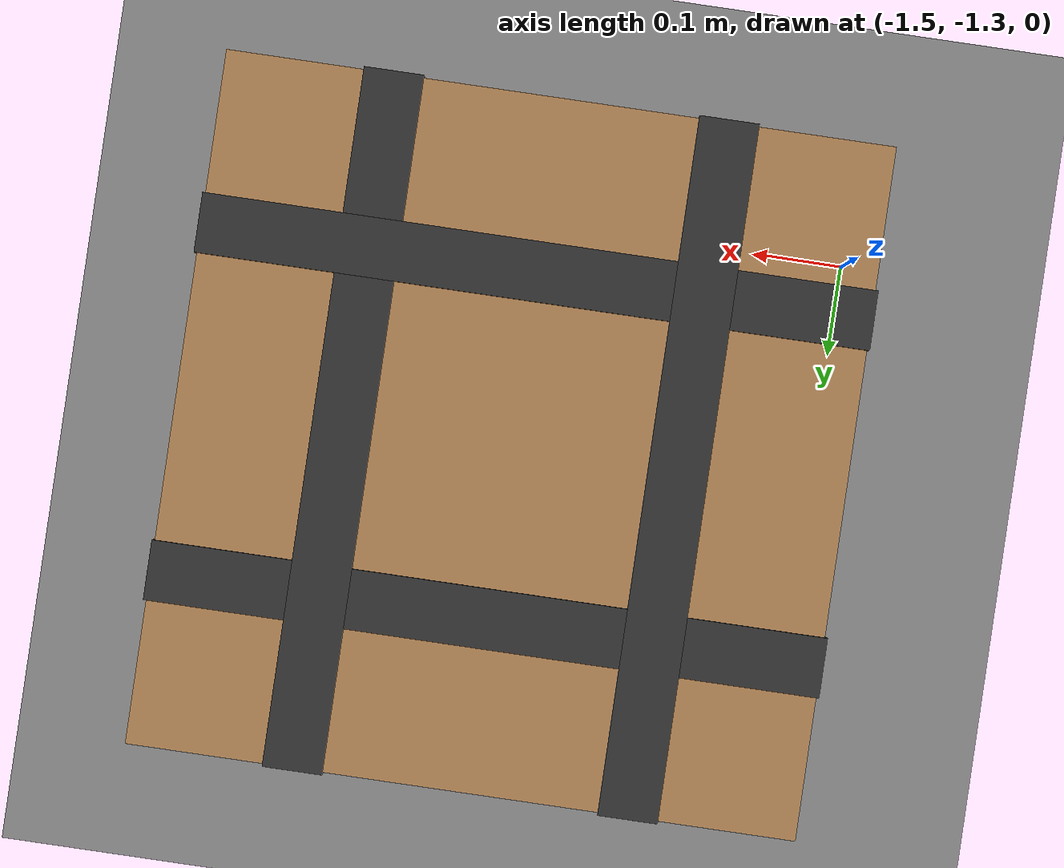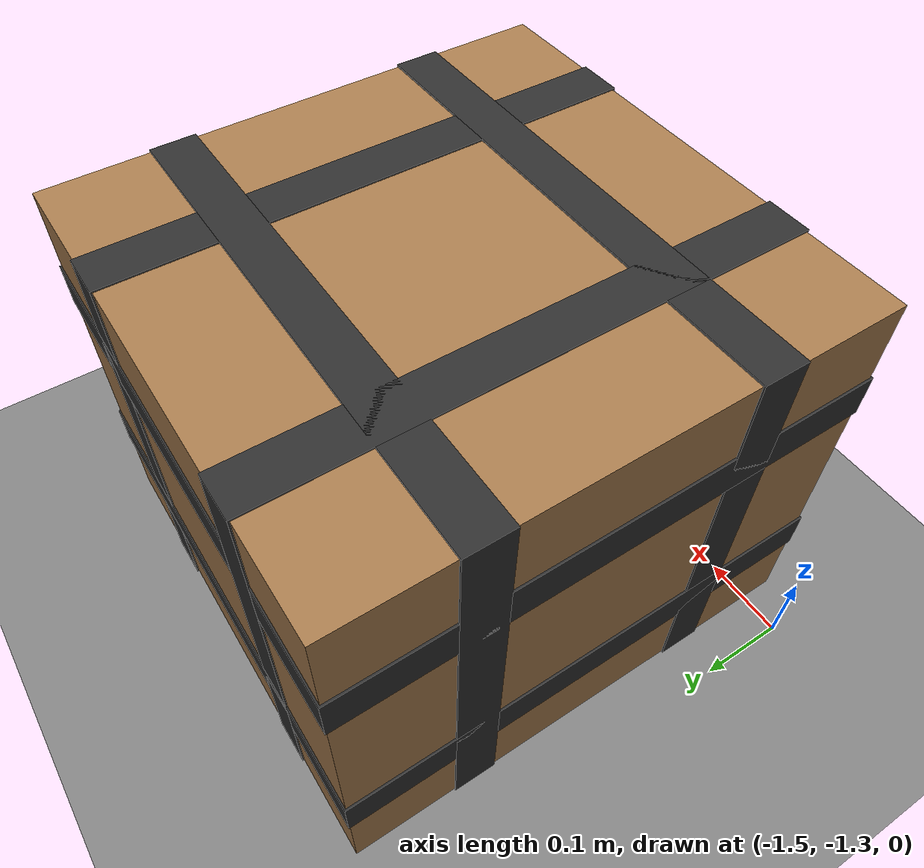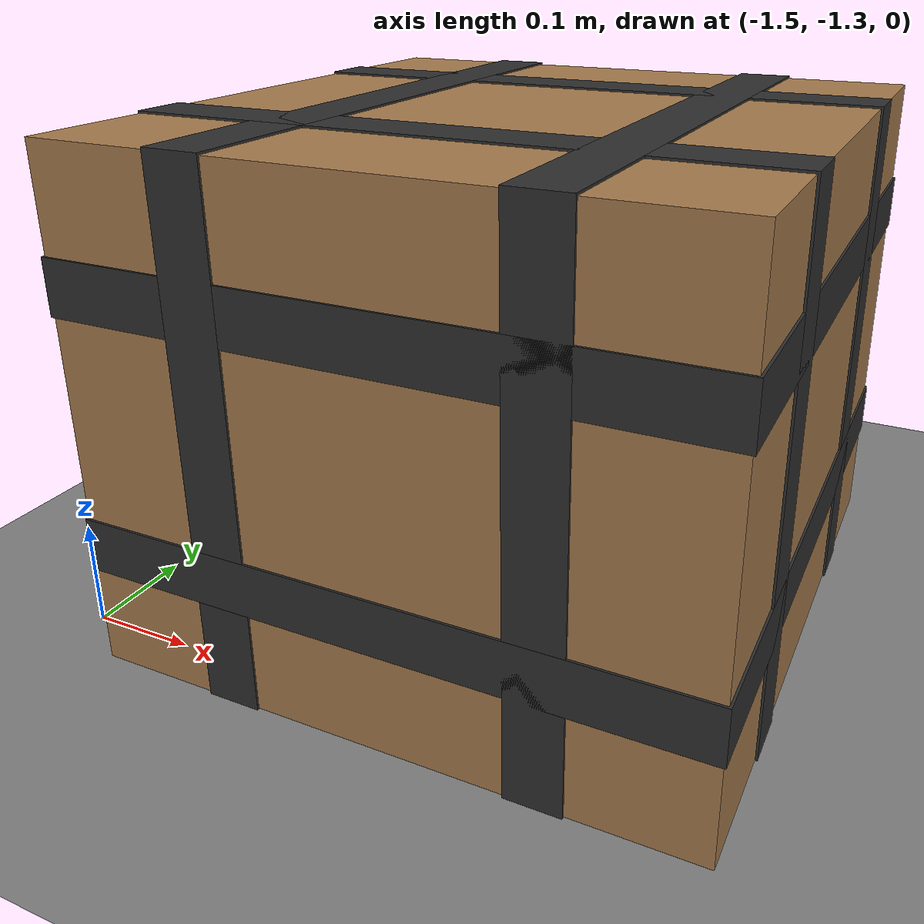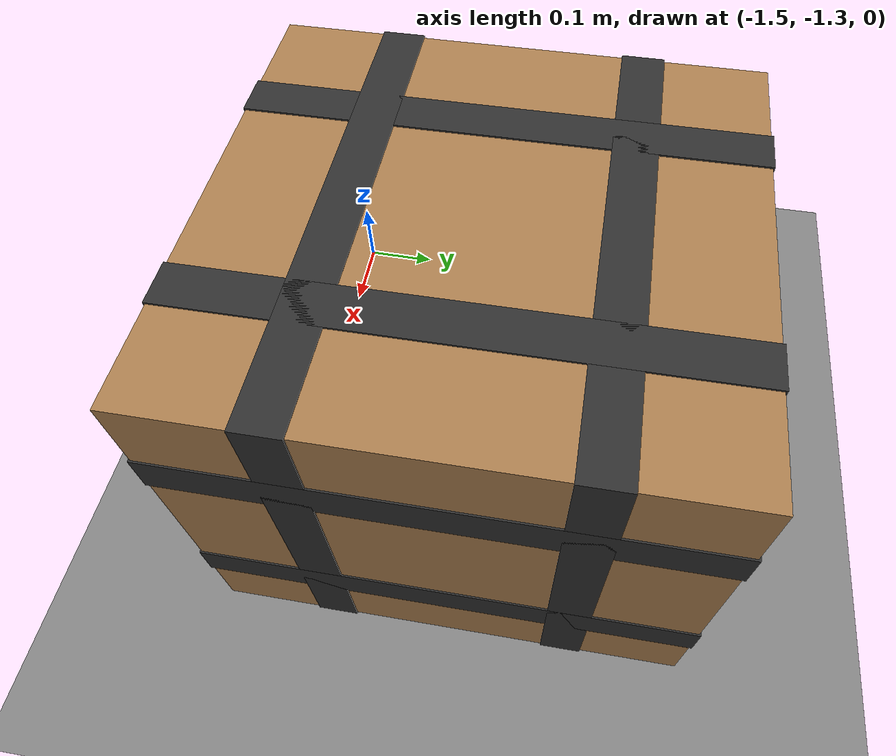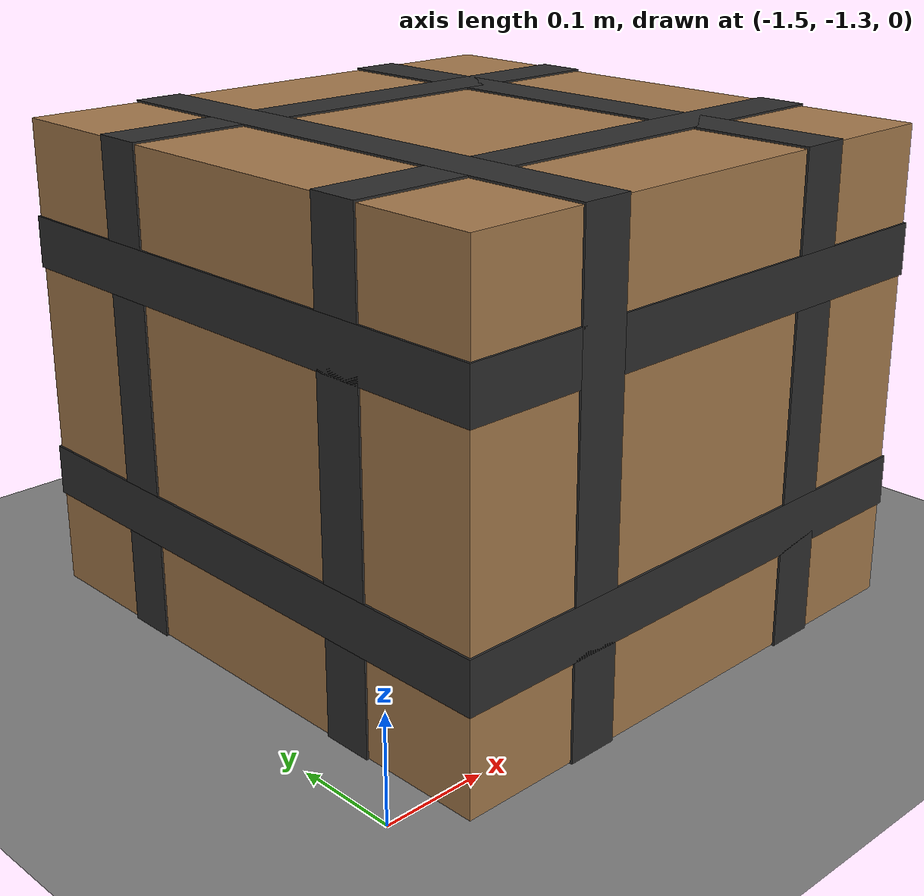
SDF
<sdf version="1.9">
 <world name="ecps295_lowbox_s23_monitor">
  <model name="ground_plane">
   <static>true</static>
   <link name="link">
    <collision name="collision">
     <geometry><plane><normal>0 0 1</normal><size>50 50</size></plane></geometry>
    </collision>
    <visual name="visual">
     <geometry><plane><normal>0 0 1</normal><size>50 50</size></plane></geometry>
     <material><ambient>0.5 0.5 0.5 1</ambient><diffuse>0.5 0.5 0.5 1</diffuse></material>
    </visual>
   </link>
  </model>
  <model name="lb4">
   <static>true</static>
   <pose>-1.17 -1.05 0.235 0 0 0</pose>
   <link name="link">
    <collision name="c"><geometry><box><size>0.56 0.58 0.47</size></box></geometry></collision>
    <visual name="v">
     <geometry><box><size>0.56 0.58 0.47</size></box></geometry>
     <material><ambient>0.65 0.48 0.30 1</ambient><diffuse>0.65 0.48 0.30 1</diffuse></material>
    </visual>
    <visual name="tape_ring0">
     <pose>0.000 0.000 -0.117 0 0 0</pose>
     <geometry><box><size>0.564 0.584 0.050</size></box></geometry>
     <material><ambient>0.18 0.18 0.18 1</ambient><diffuse>0.18 0.18 0.18 1</diffuse></material>
    </visual>
    <visual name="tape_bx0">
     <pose>-0.140 0.000 0.000 0 0 0</pose>
     <geometry><box><size>0.050 0.584 0.474</size></box></geometry>
     <material><ambient>0.18 0.18 0.18 1</ambient><diffuse>0.18 0.18 0.18 1</diffuse></material>
    </visual>
    <visual name="tape_by0">
     <pose>0.000 -0.145 0.000 0 0 0</pose>
     <geometry><box><size>0.564 0.050 0.474</size></box></geometry>
     <material><ambient>0.18 0.18 0.18 1</ambient><diffuse>0.18 0.18 0.18 1</diffuse></material>
    </visual>
    <visual name="tape_ring1">
     <pose>0.000 0.000 0.117 0 0 0</pose>
     <geometry><box><size>0.564 0.584 0.050</size></box></geometry>
     <material><ambient>0.18 0.18 0.18 1</ambient><diffuse>0.18 0.18 0.18 1</diffuse></material>
    </visual>
    <visual name="tape_bx1">
     <pose>0.140 0.000 0.000 0 0 0</pose>
     <geometry><box><size>0.050 0.584 0.474</size></box></geometry>
     <material><ambient>0.18 0.18 0.18 1</ambient><diffuse>0.18 0.18 0.18 1</diffuse></material>
    </visual>
    <visual name="tape_by1">
     <pose>0.000 0.145 0.000 0 0 0</pose>
     <geometry><box><size>0.564 0.050 0.474</size></box></geometry>
     <material><ambient>0.18 0.18 0.18 1</ambient><diffuse>0.18 0.18 0.18 1</diffuse></material>
    </visual>
   </link>
  </model>
 </world>
</sdf>
